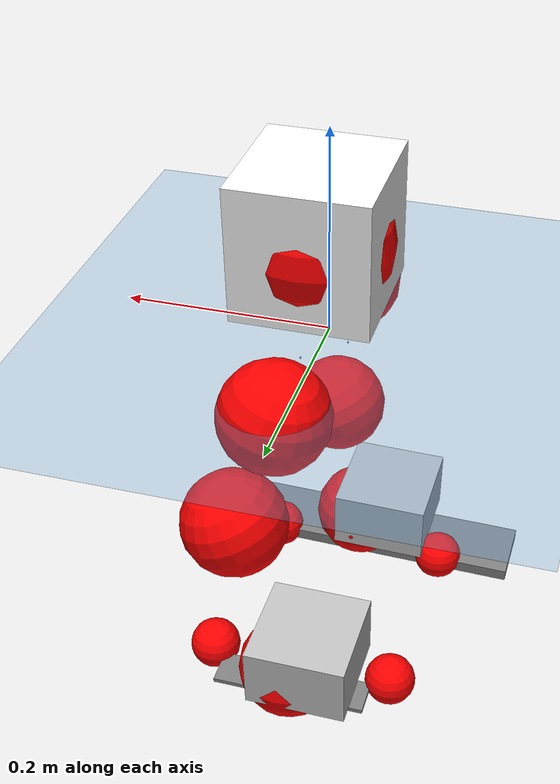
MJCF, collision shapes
<mujoco model="pi_12dof_release_v1">
  <compiler angle="radian" assetdir="assets" balanceinertia="true" inertiafromgeom="false"/>

  <option timestep="0.005" density="1.2" viscosity="2e-05"/>

  <size nkey="1"/>

  <visual>
    <quality shadowsize="8192"/>
    <map shadowclip="0.5"/>
  </visual>

  <default>
    <default class="/">
      <joint armature="0.01" damping="0.01" frictionloss="0.01"/>
      <geom contype="0" conaffinity="0" group="1" solref="-1000 -80"/>
      <site size="0.01 0.005 0.005" group="5"/>
      <general forcelimited="true" biastype="affine" gainprm="20" biasprm="0 -20 -0.5"/>
      <default class="foot">
        <geom size="0.0845 0.036 0.005" type="box" condim="6" group="4" priority="1" friction="0.9 0.2 0.2" solimp="0.015 1 0.005"/>
      </default>
      <default class="reward_collision_sphere">
        <geom group="5" rgba="1 0 0 1"/>
      </default>
    </default>
  </default>

  <asset>
    <texture type="skybox" colorspace="auto" name="//unnamed_texture_0" builtin="gradient" rgb1="0.95 0.95 0.95" rgb2="0.95 0.95 0.95" width="100" height="600"/>
    <texture type="2d" colorspace="auto" name="texplane" builtin="checker" rgb1="0.345 0.575 0.748" rgb2="0.345 0.575 0.748" markrgb="1 1 1" width="512" height="512"/>
    <material name="MatPlane" class="/" texture="texplane" texuniform="true" texrepeat="2 2" specular="0.9"/>
    <mesh name="baselink_1" class="/" file="baselink_1.STL"/>
    <mesh name="r_hip_pitch_link" class="/" file="r_hip_pitch_link.STL"/>
    <mesh name="r_hip_roll_link" class="/" file="r_hip_roll_link.STL"/>
    <mesh name="r_thigh_link" class="/" file="r_thigh_link.STL"/>
    <mesh name="r_calf_link" class="/" file="r_calf_link.STL"/>
    <mesh name="r_ankle_pitch_link" class="/" file="r_ankle_pitch_link.STL"/>
    <mesh name="r_ankle_roll_link" class="/" file="r_ankle_roll_link.STL"/>
    <mesh name="l_hip_pitch_link" class="/" file="l_hip_pitch_link.STL"/>
    <mesh name="l_hip_roll_link" class="/" file="l_hip_roll_link.STL"/>
    <mesh name="l_thigh_link" class="/" file="l_thigh_link.STL"/>
    <mesh name="l_calf_link" class="/" file="l_calf_link.STL"/>
    <mesh name="l_ankle_pitch_link" class="/" file="l_ankle_pitch_link.STL"/>
    <mesh name="l_ankle_roll_link" class="/" file="l_ankle_roll_link.STL"/>
  </asset>

  <worldbody>
    <geom name="floor" class="/" size="100 100 0.125" type="plane" group="0" material="MatPlane"/>
    <light name="toplight_shadow" class="/" pos="0 0 5" dir="0.0990148 0.0990148 -0.990148" type="directional" ambient="0.04 0.04 0.04" diffuse="0.55 0.55 0.55" specular="0.12 0.12 0.12"/>
    <light name="toplight_fill" class="/" pos="0 0 5" dir="0.0990148 0.0990148 -0.990148" type="directional" castshadow="false" ambient="0.04 0.04 0.04" diffuse="0.3 0.3 0.3" specular="0.08 0.08 0.08"/>
    <body name="trunk" pos="0.0123527 -0.00451589 0.0097495" quat="0.999984 -0.00560011 0.000768262 -0.000361685">
      <inertial pos="0.0133578 -0.0103243 0.0421241" quat="0.700475 -0.0188061 0.0711708 0.709871" mass="4.31596" diaginertia="0.0390478 0.0502203 0.00487136"/>
      <joint name="//unnamed_joint_0" type="free"/>
      <geom name="//unnamed_geom_1" class="/" type="mesh" density="0" rgba="1 1 1 1" mesh="baselink_1"/>
      <geom name="//unnamed_geom_2" class="/" size="0.0654319 0.0654319 0.0654319" pos="0 0 0.0883653" type="box" rgba="1 1 1 1"/>
      <geom name="//unnamed_geom_3" class="reward_collision_sphere" size="0.0719751" pos="0 0 0.0773196"/>
      <site name="imu" class="/" pos="-0.051793 0.0880819 0.0393127" size="0.0130864"/>
      <camera name="track" class="/" pos="0 -2.8255 0" quat="0.707107 0.707107 0 0" mode="trackcom"/>
      <camera name="ego_camera" class="/" pos="0.105645 0 0.198822" quat="-0.5 -0.5 0.5 0.5"/>
      <body name="r_hip_pitch_link" pos="-0.00211941 -0.0311216 -0.0289367" quat="0.991565 -0.00711472 -0.129412 0.000689528">
        <inertial pos="0.0111798 -0.0808998 0.00623894" quat="-0.0478609 0.688482 0.0222929 0.723329" mass="0.667154" diaginertia="0.000481316 0.000439352 9.60121e-05"/>
        <joint name="r_hip_pitch_joint" class="/" pos="0 0 0" axis="-0.0396143 -0.999173 0.00917986" stiffness="0.0763223" range="-1.77553 1.18864" armature="0.019723" damping="0" frictionloss="0.00866951"/>
        <geom name="//unnamed_geom_4" class="/" type="mesh" density="0" rgba="0.75294 0.75294 0.75294 1" mesh="r_hip_pitch_link"/>
        <geom name="//unnamed_geom_5" class="/" size="0.000654319 0.000654319 0.000654319" type="box" rgba="0.75294 0.75294 0.75294 1"/>
        <body name="r_hip_roll_link" pos="0.00238627 -0.0746001 0.00589955" quat="1 -2.01914e-05 6.50349e-05 0.00022154">
          <inertial pos="-8.62755e-06 0.0160082 -0.0495107" quat="0.724757 -0.0561965 -0.0816668 0.681836" mass="0.894926" diaginertia="0.00167912 0.00170674 0.000190468"/>
          <joint name="r_hip_roll_joint" class="/" pos="0 0 0" axis="-0.998062 0.0594611 -0.0183299" stiffness="0.0534488" range="-0.191025 0.187955" armature="0.00769847" damping="0.0485081" frictionloss="0.0179213"/>
          <geom name="//unnamed_geom_6" class="/" type="mesh" density="0" rgba="0.75294 0.75294 0.75294 1" mesh="r_hip_roll_link"/>
          <geom name="//unnamed_geom_7" class="/" size="0.000654319 0.000654319 0.000654319" type="box" rgba="0.75294 0.75294 0.75294 1"/>
          <geom name="//unnamed_geom_8" class="reward_collision_sphere" size="0.0523455"/>
          <body name="r_thigh_link" pos="-0.018124 -0.0164381 -0.088532" quat="1 2.76565e-05 1.80942e-05 4.89294e-06">
            <inertial pos="0.00695479 0.0120077 -0.0644204" quat="0.73703 0.67586 0.000260858 0.000750346" mass="0.199155" diaginertia="0.000576286 0.000560275 9.30905e-05"/>
            <joint name="r_thigh_joint" class="/" pos="0 0 0" axis="-0.00406065 -0.0570958 -0.99836" range="-0.438249 0.423467" armature="0.00937533" damping="0.0712162" frictionloss="0.0246578"/>
            <geom name="//unnamed_geom_9" class="/" type="mesh" density="0" rgba="0.75294 0.75294 0.75294 1" mesh="r_thigh_link"/>
            <geom name="//unnamed_geom_10" class="/" size="0.000654319 0.000654319 0.000654319" type="box" rgba="0.75294 0.75294 0.75294 1"/>
            <body name="r_calf_link" pos="-0.00945555 -0.0136864 -0.0936397" quat="0.947887 -5.36644e-06 0.318606 -0.00063206">
              <inertial pos="0.00614523 0.010262 -0.0789806" quat="0.996995 0.0621901 0.037735 0.0266265" mass="1.45963" diaginertia="0.0175141 0.0140233 0.000213992"/>
              <joint name="r_calf_joint" class="/" pos="0 0 0" axis="-0.00609635 -0.99961 0.0272619" stiffness="0.0763024" range="-1.96017 0.645939" armature="0.0224383" damping="0" frictionloss="0.0142901"/>
              <geom name="//unnamed_geom_11" class="/" type="mesh" density="0" rgba="0.75294 0.75294 0.75294 1" mesh="r_calf_link"/>
              <geom name="//unnamed_geom_12" class="/" size="0.000654319 0.000654319 0.000654319" type="box" rgba="0.75294 0.75294 0.75294 1"/>
              <geom name="//unnamed_geom_13" class="reward_collision_sphere" size="0.0523455"/>
              <body name="r_ankle_pitch_link" pos="-0.00931394 0.00211306 -0.141192" quat="0.979462 0.00012225 -0.201617 -0.00195972">
                <inertial pos="0.00675454 0.00517006 0.0163426" quat="0.0126111 0.663795 -0.0701507 0.744511" mass="0.287001" diaginertia="0.00153423 0.000994365 0.000156955"/>
                <joint name="r_ankle_pitch_joint" class="/" pos="0 0 0" axis="-0.0400164 -0.999194 -0.00308817" range="-1.30718 0.160051" armature="0.0128029" damping="0.0104716" frictionloss="0.00350628"/>
                <geom name="//unnamed_geom_14" class="/" type="mesh" density="0" rgba="0.75294 0.75294 0.75294 1" mesh="r_ankle_pitch_link"/>
                <geom name="//unnamed_geom_15" class="/" size="0.0510369 0.0523455 0.032716" type="box" rgba="0.75294 0.75294 0.75294 1"/>
                <body name="r_ankle_roll_link" pos="0.101976 0.000468358 -0.00133698" quat="1 -6.6604e-05 -0.000131765 -2.69221e-05">
                  <inertial pos="-0.0388931 -0.0016588 -0.0339425" quat="0.563804 0.470671 0.40727 0.542885" mass="1.65818" diaginertia="0.00686336 0.0055599 0.000679682"/>
                  <joint name="r_ankle_roll_joint" class="/" pos="0 0 0" axis="-0.997045 -0.0140605 0.0755187" range="-0.385326 0.445009" armature="0.0242832" damping="0" frictionloss="0.0198432"/>
                  <geom name="//unnamed_geom_16" class="/" type="mesh" density="0" rgba="0.75294 0.75294 0.75294 1" mesh="r_ankle_roll_link"/>
                  <geom name="//unnamed_geom_17" class="/" type="mesh" rgba="0.75294 0.75294 0.75294 1" mesh="r_ankle_roll_link"/>
                  <geom name="right_foot" class="foot" size="0.177807 0.0360855 0.00646762" pos="-0.0718385 0 -0.0486009"/>
                  <geom name="//unnamed_geom_19" class="reward_collision_sphere" size="0.0523455" pos="-0.0704299 0 -0.0220913"/>
                  <geom name="//unnamed_geom_20" class="reward_collision_sphere" size="0.0261728" pos="0.021129 0.028255 -0.0441827"/>
                  <geom name="//unnamed_geom_21" class="reward_collision_sphere" size="0.0261728" pos="-0.169032 0.028255 -0.0441827"/>
                  <site name="right_foot" class="foot" pos="-0.0718385 0 -0.0486009" size="0.0130864"/>
                </body>
              </body>
            </body>
          </body>
        </body>
      </body>
      <body name="l_hip_pitch_link" pos="0.00514259 0.0423325 -0.0208107" quat="0.992167 -0.000113151 -0.124922 1.14191e-06">
        <inertial pos="-1.89119e-05 0.0801461 0.0151147" quat="-0.0541042 0.711202 0.041662 0.699663" mass="0.740995" diaginertia="0.000611967 0.000713567 0.000166926"/>
        <joint name="l_hip_pitch_joint" class="/" pos="0 0 0" axis="-0.0514191 0.998672 -0.00313093" stiffness="0.00694256" range="-1.50316 1.68847" armature="0.0040704" damping="0" frictionloss="0.016144"/>
        <geom name="//unnamed_geom_22" class="/" type="mesh" density="0" rgba="0.75294 0.75294 0.75294 1" mesh="l_hip_pitch_link"/>
        <geom name="//unnamed_geom_23" class="/" size="0.000654319 0.000654319 0.000654319" type="box" rgba="0.75294 0.75294 0.75294 1"/>
        <body name="l_hip_roll_link" pos="-0.00299069 0.0865211 -0.00434027" quat="1 -0.000603721 7.91332e-05 -2.70699e-05">
          <inertial pos="0.0120241 -0.00453508 -0.0496236" quat="0.741302 -0.0376944 -0.101988 0.662306" mass="0.827086" diaginertia="0.00197923 0.00135826 0.000224948"/>
          <joint name="l_hip_roll_joint" class="/" pos="0 0 0" axis="-0.999671 -0.0226874 -0.0119673" range="-0.179346 -0.149363" armature="0.0200897" damping="0.0974764" frictionloss="0.0133225"/>
          <geom name="//unnamed_geom_24" class="/" type="mesh" density="0" rgba="0.75294 0.75294 0.75294 1" mesh="l_hip_roll_link"/>
          <geom name="//unnamed_geom_25" class="/" size="0.000654319 0.000654319 0.000654319" type="box" rgba="0.75294 0.75294 0.75294 1"/>
          <geom name="//unnamed_geom_26" class="reward_collision_sphere" size="0.0523455"/>
          <body name="l_thigh_link" pos="0.0109609 -0.00877742 -0.0636485" quat="0.999999 0.00124998 -0.000288515 0.000268026">
            <inertial pos="-0.0104965 0.00929655 -0.0642444" quat="0.629516 0.776344 0.0266497 0.0170258" mass="0.290675" diaginertia="0.000690031 0.00047298 0.000103512"/>
            <joint name="l_thigh_joint" class="/" pos="0 0 0" axis="-0.00425613 0.00720542 -0.999965" stiffness="0.0849792" range="-0.632669 0.500956" armature="0.0143454" damping="0.0078392" frictionloss="0.0158308"/>
            <geom name="//unnamed_geom_27" class="/" type="mesh" density="0" rgba="0.75294 0.75294 0.75294 1" mesh="l_thigh_link"/>
            <geom name="//unnamed_geom_28" class="/" size="0.000654319 0.000654319 0.000654319" type="box" rgba="0.75294 0.75294 0.75294 1"/>
            <body name="l_calf_link" pos="-0.00175191 0.00701876 -0.0781443" quat="0.947448 -0.00340349 0.319885 -0.00208898">
              <inertial pos="-0.00145088 -0.00960269 -0.0646785" quat="0.999961 0.00585807 -0.000344698 0.0066142" mass="1.96428" diaginertia="0.0251429 0.0254758 0.000349672"/>
              <joint name="l_calf_joint" class="/" pos="0 0 0" axis="0.000405631 1 -0.000272274" range="-0.994769 1.34422" armature="0.013784" damping="0.00789193" frictionloss="0.00815302"/>
              <geom name="//unnamed_geom_29" class="/" type="mesh" density="0" rgba="0.75294 0.75294 0.75294 1" mesh="l_calf_link"/>
              <geom name="//unnamed_geom_30" class="/" size="0.000654319 0.000654319 0.000654319" type="box" rgba="0.75294 0.75294 0.75294 1"/>
              <geom name="//unnamed_geom_31" class="reward_collision_sphere" size="0.0523455"/>
              <body name="l_ankle_pitch_link" pos="-0.00536157 0.00169171 -0.170625" quat="0.980076 2.12881e-05 -0.198622 9.47197e-05">
                <inertial pos="0.0177451 -0.013509 -0.000828924" quat="-0.00238383 0.707283 0.00265285 0.706922" mass="0.542762" diaginertia="0.00177423 0.001532 0.000191583"/>
                <joint name="l_ankle_pitch_joint" class="/" pos="0 0 0" axis="-7.98309e-05 1 0.000311146" stiffness="0.0054007" range="-0.196034 1.40756" armature="0.0212466" damping="0.0212367" frictionloss="0.00926158"/>
                <geom name="//unnamed_geom_32" class="/" type="mesh" density="0" rgba="0.75294 0.75294 0.75294 1" mesh="l_ankle_pitch_link"/>
                <geom name="//unnamed_geom_33" class="/" size="0.0510369 0.0523455 0.032716" type="box" rgba="0.75294 0.75294 0.75294 1"/>
                <body name="l_ankle_roll_link" pos="0.089714 0.00267142 -0.00288704" quat="0.999997 0.00215099 3.93091e-05 0.00117319">
                  <inertial pos="-0.0412579 0.000205041 -0.0158116" quat="0.556277 0.4431 0.416143 0.566607" mass="1.54833" diaginertia="0.00771168 0.00694315 0.000514585"/>
                  <joint name="l_ankle_roll_joint" class="/" pos="0 0 0" axis="-0.999382 -0.0299415 0.0184196" stiffness="0.00478858" range="-0.301275 0.166194" armature="0.00494046" damping="0.0159031" frictionloss="0.0127185"/>
                  <geom name="//unnamed_geom_34" class="/" type="mesh" density="0" rgba="0.75294 0.75294 0.75294 1" mesh="l_ankle_roll_link"/>
                  <geom name="//unnamed_geom_35" class="/" type="mesh" rgba="0.75294 0.75294 0.75294 1" mesh="l_ankle_roll_link"/>
                  <geom name="left_foot" class="foot" size="0.0793048 0.0186129 0.00228971" pos="-0.0718385 0 -0.0486009"/>
                  <geom name="//unnamed_geom_37" class="reward_collision_sphere" size="0.0523455" pos="-0.0704299 0 -0.0220913"/>
                  <geom name="//unnamed_geom_38" class="reward_collision_sphere" size="0.0261728" pos="0.021129 -0.028255 -0.0441827"/>
                  <geom name="//unnamed_geom_39" class="reward_collision_sphere" size="0.0261728" pos="-0.169032 -0.028255 -0.0441827"/>
                  <site name="left_foot" class="foot" pos="-0.0718385 0 -0.0486009" size="0.0130864"/>
                </body>
              </body>
            </body>
          </body>
        </body>
      </body>
    </body>
  </worldbody>

  <contact>
    <pair class="/" geom1="floor" geom2="right_foot" name="//unnamed_contact_1"/>
    <pair class="/" geom1="floor" geom2="left_foot" name="//unnamed_contact_0"/>
  </contact>

  <actuator>
    <general name="r_hip_pitch_joint" class="/" joint="r_hip_pitch_joint" forcerange="-27.567 27.567" gainprm="27.0574" biasprm="0 -27.0574 -0.689257"/>
    <general name="r_hip_roll_joint" class="/" joint="r_hip_roll_joint" forcerange="-42.8366 42.8366" gainprm="27.0574" biasprm="0 -27.0574 -0.689257"/>
    <general name="r_thigh_joint" class="/" joint="r_thigh_joint" forcerange="-17.2345 17.2345" gainprm="27.0574" biasprm="0 -27.0574 -0.689257"/>
    <general name="r_calf_joint" class="/" joint="r_calf_joint" forcerange="-35.0186 35.0186" gainprm="27.0574" biasprm="0 -27.0574 -0.689257"/>
    <general name="r_ankle_pitch_joint" class="/" joint="r_ankle_pitch_joint" forcerange="-19.279 19.279" gainprm="27.0574" biasprm="0 -27.0574 -0.689257"/>
    <general name="r_ankle_roll_joint" class="/" joint="r_ankle_roll_joint" forcerange="-16.901 16.901" gainprm="27.0574" biasprm="0 -27.0574 -0.689257"/>
    <general name="l_hip_pitch_joint" class="/" joint="l_hip_pitch_joint" forcerange="-22.275 22.275" gainprm="27.0574" biasprm="0 -27.0574 -0.689257"/>
    <general name="l_hip_roll_joint" class="/" joint="l_hip_roll_joint" forcerange="-12.7539 12.7539" gainprm="27.0574" biasprm="0 -27.0574 -0.689257"/>
    <general name="l_thigh_joint" class="/" joint="l_thigh_joint" forcerange="-43.3693 43.3693" gainprm="27.0574" biasprm="0 -27.0574 -0.689257"/>
    <general name="l_calf_joint" class="/" joint="l_calf_joint" forcerange="-23.9732 23.9732" gainprm="27.0574" biasprm="0 -27.0574 -0.689257"/>
    <general name="l_ankle_pitch_joint" class="/" joint="l_ankle_pitch_joint" forcerange="-16.1768 16.1768" gainprm="27.0574" biasprm="0 -27.0574 -0.689257"/>
    <general name="l_ankle_roll_joint" class="/" joint="l_ankle_roll_joint" forcerange="-8.92976 8.92976" gainprm="27.0574" biasprm="0 -27.0574 -0.689257"/>
  </actuator>

  <sensor>
    <gyro site="imu" name="imu_angular_velocity"/>
    <velocimeter site="imu" name="imu_linear_velocity"/>
    <framelinvel objtype="site" objname="left_foot" name="left_foot_global_linear_velocity"/>
    <framelinvel objtype="site" objname="right_foot" name="right_foot_global_linear_velocity"/>
  </sensor>

  <keyframe>
    <key name="home" qpos="0 0 0.291 1 0 0 0 0.4 0 0 -0.8 0.4 0 -0.4 0 0 0.8 -0.4 0"/>
  </keyframe>
</mujoco>
